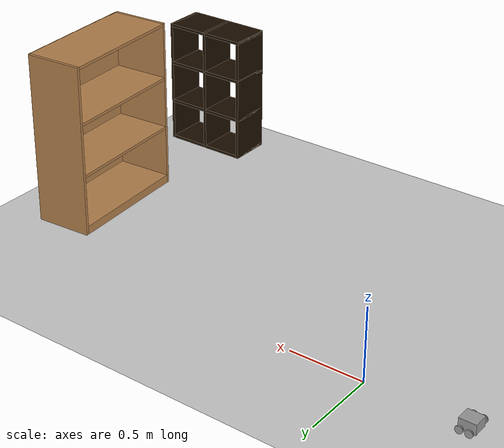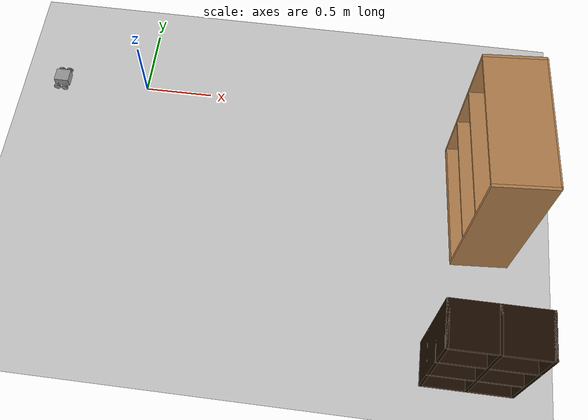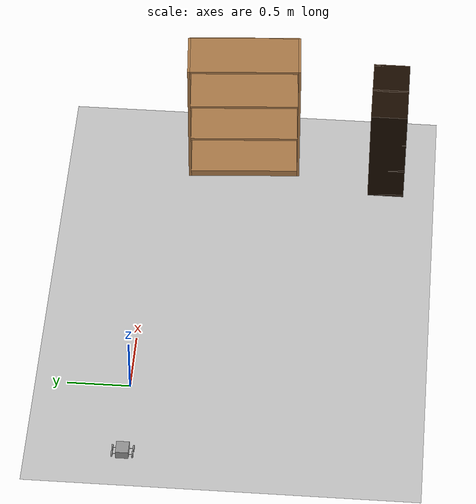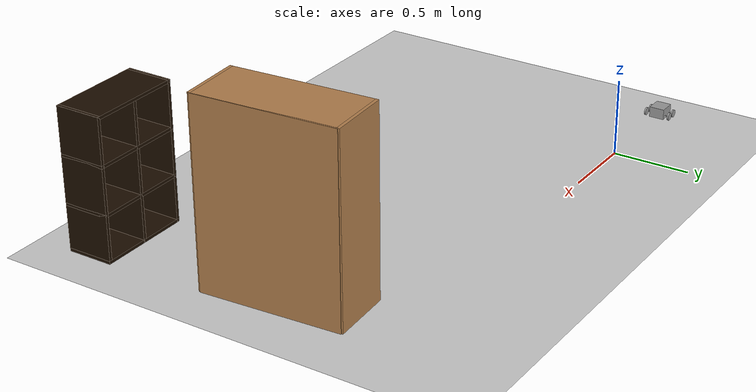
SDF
<sdf version="1.6">
 <world name="default">
  <model name="ground_plane">
   <static>1</static>
   <link name="link">
    <collision name="collision">
     <geometry><plane><normal>0 0 1</normal><size>100 100</size></plane></geometry>
     <surface>
      <contact><collide_bitmask>65535</collide_bitmask></contact>
      <friction><ode><mu>100</mu><mu2>50</mu2></ode></friction>
     </surface>
    </collision>
    <visual name="visual">
     <cast_shadows>0</cast_shadows>
     <geometry><plane><normal>0 0 1</normal><size>100 100</size></plane></geometry>
     <material>
      <script><uri>file://media/materials/scripts/gazebo.material</uri><name>Gazebo/Grey</name></script>
     </material>
    </visual>
   </link>
  </model>
  <model name="6_Cube_StorageE_0">
   <link name="Wall_0">
    <pose>0 0 0.01 0 -0 0</pose>
    <inertial>
     <mass>1.6201</mass>
     <inertia><ixx>0.0119</ixx><iyy>0.0631</iyy><izz>0.0513</izz><ixy>0</ixy><ixz>0</ixz><iyz>0</iyz></inertia>
    </inertial>
    <collision name="Wall_0_Collision"><geometry><box><size>0.616 0.296 0.02</size></box></geometry></collision>
    <visual name="Wall_0_Visual">
     <geometry><box><size>0.616 0.296 0.02</size></box></geometry>
     <material>
      <script><uri>file://media/materials/scripts/gazebo.material</uri><name>Gazebo/Grey</name></script>
      <ambient>0.105882 0.0509804 0 1</ambient>
     </material>
    </visual>
   </link>
   <joint name="0_2" type="fixed">
    <pose>-0.308 0 0 0 -0 0</pose>
    <parent>Wall_2</parent>
    <child>Wall_0</child>
    <axis>
     <xyz>1 0 0</xyz>
     <use_parent_model_frame>0</use_parent_model_frame>
     <limit><lower>-1e+16</lower><upper>1e+16</upper></limit>
    </axis>
   </joint>
   <joint name="0_12" type="fixed">
    <parent>Wall_12</parent>
    <child>Wall_0</child>
    <axis>
     <xyz>0 0 1</xyz>
     <use_parent_model_frame>0</use_parent_model_frame>
     <limit><lower>-1e+16</lower><upper>1e+16</upper></limit>
    </axis>
   </joint>
   <joint name="0_4" type="fixed">
    <pose>0.308 0 0 0 -0 0</pose>
    <parent>Wall_4</parent>
    <child>Wall_0</child>
    <axis>
     <xyz>1 0 0</xyz>
     <use_parent_model_frame>0</use_parent_model_frame>
     <limit><lower>-1e+16</lower><upper>1e+16</upper></limit>
    </axis>
   </joint>
   <link name="Wall_10">
    <pose>0 0 0.61 0 -0 0</pose>
    <inertial>
     <mass>1.6201</mass>
     <inertia><ixx>0.0119</ixx><iyy>0.0631</iyy><izz>0.0513</izz><ixy>0</ixy><ixz>0</ixz><iyz>0</iyz></inertia>
    </inertial>
    <collision name="Wall_10_Collision"><geometry><box><size>0.616 0.296 0.02</size></box></geometry></collision>
    <visual name="Wall_10_Visual">
     <geometry><box><size>0.616 0.296 0.02</size></box></geometry>
     <material>
      <script><uri>file://media/materials/scripts/gazebo.material</uri><name>Gazebo/Grey</name></script>
      <ambient>0.105882 0.0509804 0 1</ambient>
     </material>
    </visual>
   </link>
   <joint name="10_2" type="fixed">
    <pose>-0.308 0 0 0 -0 0</pose>
    <parent>Wall_2</parent>
    <child>Wall_10</child>
    <axis>
     <xyz>1 0 0</xyz>
     <use_parent_model_frame>0</use_parent_model_frame>
     <limit><lower>-1e+16</lower><upper>1e+16</upper></limit>
    </axis>
   </joint>
   <joint name="10_12" type="fixed">
    <parent>Wall_12</parent>
    <child>Wall_10</child>
    <axis>
     <xyz>0 0 1</xyz>
     <use_parent_model_frame>0</use_parent_model_frame>
     <limit><lower>-1e+16</lower><upper>1e+16</upper></limit>
    </axis>
   </joint>
   <joint name="10_4" type="fixed">
    <pose>0.308 0 0 0 -0 0</pose>
    <parent>Wall_4</parent>
    <child>Wall_10</child>
    <axis>
     <xyz>1 0 0</xyz>
     <use_parent_model_frame>0</use_parent_model_frame>
     <limit><lower>-1e+16</lower><upper>1e+16</upper></limit>
    </axis>
   </joint>
   <link name="Wall_12">
    <pose>0 0 0.4575 0 -0 0</pose>
    <inertial>
     <mass>2.4065</mass>
     <inertia><ixx>0.0177</ixx><iyy>0.1855</iyy><izz>0.168</izz><ixy>0</ixy><ixz>0</ixz><iyz>0</iyz></inertia>
    </inertial>
    <collision name="Wall_12_Collision"><geometry><box><size>0.02 0.296 0.915</size></box></geometry></collision>
    <visual name="Wall_12_Visual">
     <geometry><box><size>0.02 0.296 0.915</size></box></geometry>
     <material>
      <script><uri>file://media/materials/scripts/gazebo.material</uri><name>Gazebo/Grey</name></script>
      <ambient>0.105882 0.0509804 0 1</ambient>
     </material>
    </visual>
   </link>
   <link name="Wall_2">
    <pose>-0.298 0 0.4575 0 -0 0</pose>
    <inertial>
     <mass>2.4065</mass>
     <inertia><ixx>0.0177</ixx><iyy>0.1855</iyy><izz>0.168</izz><ixy>0</ixy><ixz>0</ixz><iyz>0</iyz></inertia>
    </inertial>
    <collision name="Wall_2_Collision"><geometry><box><size>0.02 0.296 0.915</size></box></geometry></collision>
    <visual name="Wall_2_Visual">
     <geometry><box><size>0.02 0.296 0.915</size></box></geometry>
     <material>
      <script><uri>file://media/materials/scripts/gazebo.material</uri><name>Gazebo/Grey</name></script>
      <ambient>0.105882 0.0509804 0 1</ambient>
     </material>
    </visual>
   </link>
   <link name="Wall_4">
    <pose>0.298 0 0.4575 0 -0 0</pose>
    <inertial>
     <mass>2.4065</mass>
     <inertia><ixx>0.0177</ixx><iyy>0.1855</iyy><izz>0.168</izz><ixy>0</ixy><ixz>0</ixz><iyz>0</iyz></inertia>
    </inertial>
    <collision name="Wall_4_Collision"><geometry><box><size>0.02 0.296 0.915</size></box></geometry></collision>
    <visual name="Wall_4_Visual">
     <geometry><box><size>0.02 0.296 0.915</size></box></geometry>
     <material>
      <script><uri>file://media/materials/scripts/gazebo.material</uri><name>Gazebo/Grey</name></script>
      <ambient>0.105882 0.0509804 0 1</ambient>
     </material>
    </visual>
   </link>
   <link name="Wall_6">
    <pose>0 0 0.905 0 -0 0</pose>
    <inertial>
     <mass>1.6201</mass>
     <inertia><ixx>0.0119</ixx><iyy>0.0631</iyy><izz>0.0513</izz><ixy>0</ixy><ixz>0</ixz><iyz>0</iyz></inertia>
    </inertial>
    <collision name="Wall_6_Collision"><geometry><box><size>0.616 0.296 0.02</size></box></geometry></collision>
    <visual name="Wall_6_Visual">
     <geometry><box><size>0.616 0.296 0.02</size></box></geometry>
     <material>
      <script><uri>file://media/materials/scripts/gazebo.material</uri><name>Gazebo/Grey</name></script>
      <ambient>0.105882 0.0509804 0 1</ambient>
     </material>
    </visual>
   </link>
   <joint name="6_2" type="fixed">
    <pose>-0.308 0 0 0 -0 0</pose>
    <parent>Wall_2</parent>
    <child>Wall_6</child>
    <axis>
     <xyz>2 0 0</xyz>
     <use_parent_model_frame>0</use_parent_model_frame>
     <limit><lower>-1e+16</lower><upper>1e+16</upper></limit>
    </axis>
   </joint>
   <joint name="6_12" type="fixed">
    <parent>Wall_12</parent>
    <child>Wall_6</child>
    <axis>
     <xyz>0 0 1</xyz>
     <use_parent_model_frame>0</use_parent_model_frame>
     <limit><lower>-1e+16</lower><upper>1e+16</upper></limit>
    </axis>
   </joint>
   <joint name="6_4" type="fixed">
    <pose>0.308 0 0 0 -0 0</pose>
    <parent>Wall_4</parent>
    <child>Wall_6</child>
    <axis>
     <xyz>1 0 0</xyz>
     <use_parent_model_frame>0</use_parent_model_frame>
     <limit><lower>-1e+16</lower><upper>1e+16</upper></limit>
    </axis>
   </joint>
   <link name="Wall_8">
    <pose>0 0 0.305 0 -0 0</pose>
    <inertial>
     <mass>1.6201</mass>
     <inertia><ixx>0.0119</ixx><iyy>0.0631</iyy><izz>0.0513</izz><ixy>0</ixy><ixz>0</ixz><iyz>0</iyz></inertia>
    </inertial>
    <collision name="Wall_8_Collision"><geometry><box><size>0.616 0.296 0.02</size></box></geometry></collision>
    <visual name="Wall_8_Visual">
     <geometry><box><size>0.616 0.296 0.02</size></box></geometry>
     <material>
      <script><uri>file://media/materials/scripts/gazebo.material</uri><name>Gazebo/Grey</name></script>
      <ambient>0.105882 0.0509804 0 1</ambient>
     </material>
    </visual>
   </link>
   <joint name="8_2" type="fixed">
    <pose>-0.308 0 0 0 -0 0</pose>
    <parent>Wall_2</parent>
    <child>Wall_8</child>
    <axis>
     <xyz>1 0 0</xyz>
     <use_parent_model_frame>0</use_parent_model_frame>
     <limit><lower>-1e+16</lower><upper>1e+16</upper></limit>
    </axis>
   </joint>
   <joint name="8_12" type="fixed">
    <parent>Wall_12</parent>
    <child>Wall_8</child>
    <axis>
     <xyz>0 0 1</xyz>
     <use_parent_model_frame>0</use_parent_model_frame>
     <limit><lower>-1e+16</lower><upper>1e+16</upper></limit>
    </axis>
   </joint>
   <joint name="8_4" type="fixed">
    <pose>0.308 0 0 0 -0 0</pose>
    <parent>Wall_4</parent>
    <child>Wall_8</child>
    <axis>
     <xyz>1 0 0</xyz>
     <use_parent_model_frame>0</use_parent_model_frame>
     <limit><lower>-1e+16</lower><upper>1e+16</upper></limit>
    </axis>
   </joint>
   <static>1</static>
   <pose>2.51935 -1.90641 0 0 -0 0</pose>
  </model>
  <model name="Scout_0">
   <link name="link_5">
    <pose>0.000124 0.000467 0.012036 0 1.5707 0</pose>
    <inertial>
     <mass>1</mass>
     <inertia>
      <ixx>0.166667</ixx>
      <ixy>0</ixy>
      <ixz>0</ixz>
      <iyy>0.166667</iyy>
      <iyz>0</iyz>
      <izz>0.166667</izz>
     </inertia>
    </inertial>
    <visual name="visual">
     <geometry><box><size>0.07 0.1 0.11</size></box></geometry>
     <material>
      <lighting>1</lighting>
      <script><uri>file://media/materials/scripts/gazebo.material</uri><name>Gazebo/Grey</name></script>
      <shader type="pixel"><normal_map>__default__</normal_map></shader>
      <ambient>0.3 0.3 0.3 1</ambient>
      <diffuse>0.7 0.7 0.7 1</diffuse>
      <specular>0.01 0.01 0.01 1</specular>
      <emissive>0 0 0 1</emissive>
     </material>
    </visual>
    <collision name="collision">
     <geometry><box><size>0.07 0.1 0.11</size></box></geometry>
     <surface>
      <friction>
       <ode><mu>1</mu><mu2>1</mu2><fdir1>0 0 0</fdir1><slip1>0</slip1><slip2>0</slip2></ode>
       <torsional>
        <coefficient>1</coefficient>
        <patch_radius>0</patch_radius>
        <surface_radius>0</surface_radius>
        <use_patch_radius>1</use_patch_radius>
        <ode><slip>0</slip></ode>
       </torsional>
      </friction>
      <bounce><restitution_coefficient>0</restitution_coefficient><threshold>1e+06</threshold></bounce>
      <contact>
       <collide_without_contact>0</collide_without_contact>
       <collide_without_contact_bitmask>1</collide_without_contact_bitmask>
       <collide_bitmask>1</collide_bitmask>
       <ode>
        <soft_cfm>0</soft_cfm>
        <soft_erp>0.2</soft_erp>
        <kp>1e+13</kp>
        <kd>1</kd>
        <max_vel>0.01</max_vel>
        <min_depth>0</min_depth>
       </ode>
       <bullet>
        <split_impulse>1</split_impulse>
        <split_impulse_penetration_threshold>-0.01</split_impulse_penetration_threshold>
        <soft_cfm>0</soft_cfm>
        <soft_erp>0.2</soft_erp>
        <kp>1e+13</kp>
        <kd>1</kd>
       </bullet>
      </contact>
     </surface>
    </collision>
   </link>
   <link name="link_6">
    <pose>0.030124 -0.082817 -0.002561 1.5707 -0 0</pose>
    <inertial>
     <mass>1</mass>
     <inertia><ixx>0.145833</ixx><ixy>0</ixy><ixz>0</ixz><iyy>0.145833</iyy><iyz>0</iyz><izz>0.125</izz></inertia>
    </inertial>
    <visual name="visual">
     <geometry><cylinder><radius>0.0254</radius><length>0.01</length></cylinder></geometry>
     <material>
      <lighting>1</lighting>
      <script><uri>file://media/materials/scripts/gazebo.material</uri><name>Gazebo/Grey</name></script>
      <shader type="pixel"><normal_map>__default__</normal_map></shader>
      <ambient>0.3 0.3 0.3 1</ambient>
      <diffuse>0.7 0.7 0.7 1</diffuse>
      <specular>0.01 0.01 0.01 1</specular>
      <emissive>0 0 0 1</emissive>
     </material>
    </visual>
    <collision name="collision">
     <geometry><cylinder><radius>0.0254</radius><length>0.01</length></cylinder></geometry>
     <surface>
      <friction>
       <ode><mu>1</mu><mu2>1</mu2><fdir1>0 0 0</fdir1><slip1>0</slip1><slip2>0</slip2></ode>
       <torsional>
        <coefficient>1</coefficient>
        <patch_radius>0</patch_radius>
        <surface_radius>0</surface_radius>
        <use_patch_radius>1</use_patch_radius>
        <ode><slip>0</slip></ode>
       </torsional>
      </friction>
      <bounce><restitution_coefficient>0</restitution_coefficient><threshold>1e+06</threshold></bounce>
      <contact>
       <collide_without_contact>0</collide_without_contact>
       <collide_without_contact_bitmask>1</collide_without_contact_bitmask>
       <collide_bitmask>1</collide_bitmask>
       <ode>
        <soft_cfm>0</soft_cfm>
        <soft_erp>0.2</soft_erp>
        <kp>1e+13</kp>
        <kd>1</kd>
        <max_vel>0.01</max_vel>
        <min_depth>0</min_depth>
       </ode>
       <bullet>
        <split_impulse>1</split_impulse>
        <split_impulse_penetration_threshold>-0.01</split_impulse_penetration_threshold>
        <soft_cfm>0</soft_cfm>
        <soft_erp>0.2</soft_erp>
        <kp>1e+13</kp>
        <kd>1</kd>
       </bullet>
      </contact>
     </surface>
    </collision>
   </link>
   <link name="link_6_clone">
    <pose>-0.029876 -0.079536 -0.002561 1.5707 -0 0</pose>
    <inertial>
     <mass>1</mass>
     <inertia><ixx>0.145833</ixx><ixy>0</ixy><ixz>0</ixz><iyy>0.145833</iyy><iyz>0</iyz><izz>0.125</izz></inertia>
    </inertial>
    <visual name="visual">
     <geometry><cylinder><radius>0.0254</radius><length>0.01</length></cylinder></geometry>
     <material>
      <lighting>1</lighting>
      <script><uri>file://media/materials/scripts/gazebo.material</uri><name>Gazebo/Grey</name></script>
      <shader type="pixel"><normal_map>__default__</normal_map></shader>
      <ambient>0.3 0.3 0.3 1</ambient>
      <diffuse>0.7 0.7 0.7 1</diffuse>
      <specular>0.01 0.01 0.01 1</specular>
      <emissive>0 0 0 1</emissive>
     </material>
    </visual>
    <collision name="collision">
     <geometry><cylinder><radius>0.0254</radius><length>0.01</length></cylinder></geometry>
     <surface>
      <friction>
       <ode><mu>1</mu><mu2>1</mu2><fdir1>0 0 0</fdir1><slip1>0</slip1><slip2>0</slip2></ode>
       <torsional>
        <coefficient>1</coefficient>
        <patch_radius>0</patch_radius>
        <surface_radius>0</surface_radius>
        <use_patch_radius>1</use_patch_radius>
        <ode><slip>0</slip></ode>
       </torsional>
      </friction>
      <bounce><restitution_coefficient>0</restitution_coefficient><threshold>1e+06</threshold></bounce>
      <contact>
       <collide_without_contact>0</collide_without_contact>
       <collide_without_contact_bitmask>1</collide_without_contact_bitmask>
       <collide_bitmask>1</collide_bitmask>
       <ode>
        <soft_cfm>0</soft_cfm>
        <soft_erp>0.2</soft_erp>
        <kp>1e+13</kp>
        <kd>1</kd>
        <max_vel>0.01</max_vel>
        <min_depth>0</min_depth>
       </ode>
       <bullet>
        <split_impulse>1</split_impulse>
        <split_impulse_penetration_threshold>-0.01</split_impulse_penetration_threshold>
        <soft_cfm>0</soft_cfm>
        <soft_erp>0.2</soft_erp>
        <kp>1e+13</kp>
        <kd>1</kd>
       </bullet>
      </contact>
     </surface>
    </collision>
   </link>
   <link name="link_6_clone_0">
    <pose>0.02967 0.080483 -0.002563 1.5707 -0 0</pose>
    <inertial>
     <mass>1</mass>
     <inertia><ixx>0.145833</ixx><ixy>0</ixy><ixz>0</ixz><iyy>0.145833</iyy><iyz>0</iyz><izz>0.125</izz></inertia>
    </inertial>
    <visual name="visual">
     <geometry><cylinder><radius>0.0254</radius><length>0.01</length></cylinder></geometry>
     <material>
      <lighting>1</lighting>
      <script><uri>file://media/materials/scripts/gazebo.material</uri><name>Gazebo/Grey</name></script>
      <shader type="pixel"><normal_map>__default__</normal_map></shader>
      <ambient>0.3 0.3 0.3 1</ambient>
      <diffuse>0.7 0.7 0.7 1</diffuse>
      <specular>0.01 0.01 0.01 1</specular>
      <emissive>0 0 0 1</emissive>
     </material>
    </visual>
    <collision name="collision">
     <geometry><cylinder><radius>0.0254</radius><length>0.01</length></cylinder></geometry>
     <surface>
      <friction>
       <ode><mu>1</mu><mu2>1</mu2><fdir1>0 0 0</fdir1><slip1>0</slip1><slip2>0</slip2></ode>
       <torsional>
        <coefficient>1</coefficient>
        <patch_radius>0</patch_radius>
        <surface_radius>0</surface_radius>
        <use_patch_radius>1</use_patch_radius>
        <ode><slip>0</slip></ode>
       </torsional>
      </friction>
      <bounce><restitution_coefficient>0</restitution_coefficient><threshold>1e+06</threshold></bounce>
      <contact>
       <collide_without_contact>0</collide_without_contact>
       <collide_without_contact_bitmask>1</collide_without_contact_bitmask>
       <collide_bitmask>1</collide_bitmask>
       <ode>
        <soft_cfm>0</soft_cfm>
        <soft_erp>0.2</soft_erp>
        <kp>1e+13</kp>
        <kd>1</kd>
        <max_vel>0.01</max_vel>
        <min_depth>0</min_depth>
       </ode>
       <bullet>
        <split_impulse>1</split_impulse>
        <split_impulse_penetration_threshold>-0.01</split_impulse_penetration_threshold>
        <soft_cfm>0</soft_cfm>
        <soft_erp>0.2</soft_erp>
        <kp>1e+13</kp>
        <kd>1</kd>
       </bullet>
      </contact>
     </surface>
    </collision>
   </link>
   <link name="link_6_clone_1">
    <pose>-0.029876 0.080469 -0.002563 1.5707 -0 0</pose>
    <inertial>
     <mass>1</mass>
     <inertia><ixx>0.145833</ixx><ixy>0</ixy><ixz>0</ixz><iyy>0.145833</iyy><iyz>0</iyz><izz>0.125</izz></inertia>
    </inertial>
    <visual name="visual">
     <geometry><cylinder><radius>0.0254</radius><length>0.01</length></cylinder></geometry>
     <material>
      <lighting>1</lighting>
      <script><uri>file://media/materials/scripts/gazebo.material</uri><name>Gazebo/Grey</name></script>
      <shader type="pixel"><normal_map>__default__</normal_map></shader>
      <ambient>0.3 0.3 0.3 1</ambient>
      <diffuse>0.7 0.7 0.7 1</diffuse>
      <specular>0.01 0.01 0.01 1</specular>
      <emissive>0 0 0 1</emissive>
     </material>
    </visual>
    <collision name="collision">
     <geometry><cylinder><radius>0.0254</radius><length>0.01</length></cylinder></geometry>
     <surface>
      <friction>
       <ode><mu>1</mu><mu2>1</mu2><fdir1>0 0 0</fdir1><slip1>0</slip1><slip2>0</slip2></ode>
       <torsional>
        <coefficient>1</coefficient>
        <patch_radius>0</patch_radius>
        <surface_radius>0</surface_radius>
        <use_patch_radius>1</use_patch_radius>
        <ode><slip>0</slip></ode>
       </torsional>
      </friction>
      <bounce><restitution_coefficient>0</restitution_coefficient><threshold>1e+06</threshold></bounce>
      <contact>
       <collide_without_contact>0</collide_without_contact>
       <collide_without_contact_bitmask>1</collide_without_contact_bitmask>
       <collide_bitmask>1</collide_bitmask>
       <ode>
        <soft_cfm>0</soft_cfm>
        <soft_erp>0.2</soft_erp>
        <kp>1e+13</kp>
        <kd>1</kd>
        <max_vel>0.01</max_vel>
        <min_depth>0</min_depth>
       </ode>
       <bullet>
        <split_impulse>1</split_impulse>
        <split_impulse_penetration_threshold>-0.01</split_impulse_penetration_threshold>
        <soft_cfm>0</soft_cfm>
        <soft_erp>0.2</soft_erp>
        <kp>1e+13</kp>
        <kd>1</kd>
       </bullet>
      </contact>
     </surface>
    </collision>
   </link>
   <link name="link_7">
    <pose>0.029712 0.000467 -0.000894 1.5707 -0 0</pose>
    <inertial>
     <mass>1</mass>
     <inertia><ixx>0.145833</ixx><ixy>0</ixy><ixz>0</ixz><iyy>0.145833</iyy><iyz>0</iyz><izz>0.125</izz></inertia>
    </inertial>
    <visual name="visual">
     <geometry><cylinder><radius>0.001</radius><length>0.15</length></cylinder></geometry>
     <material>
      <lighting>1</lighting>
      <script><uri>file://media/materials/scripts/gazebo.material</uri><name>Gazebo/Grey</name></script>
      <shader type="pixel"><normal_map>__default__</normal_map></shader>
      <ambient>0.3 0.3 0.3 1</ambient>
      <diffuse>0.7 0.7 0.7 1</diffuse>
      <specular>0.01 0.01 0.01 1</specular>
      <emissive>0 0 0 1</emissive>
     </material>
    </visual>
    <collision name="collision">
     <geometry><cylinder><radius>0.001</radius><length>0.15</length></cylinder></geometry>
     <surface>
      <friction>
       <ode><mu>1</mu><mu2>1</mu2><fdir1>0 0 0</fdir1><slip1>0</slip1><slip2>0</slip2></ode>
       <torsional>
        <coefficient>1</coefficient>
        <patch_radius>0</patch_radius>
        <surface_radius>0</surface_radius>
        <use_patch_radius>1</use_patch_radius>
        <ode><slip>0</slip></ode>
       </torsional>
      </friction>
      <bounce><restitution_coefficient>0</restitution_coefficient><threshold>1e+06</threshold></bounce>
      <contact>
       <collide_without_contact>0</collide_without_contact>
       <collide_without_contact_bitmask>1</collide_without_contact_bitmask>
       <collide_bitmask>1</collide_bitmask>
       <ode>
        <soft_cfm>0</soft_cfm>
        <soft_erp>0.2</soft_erp>
        <kp>1e+13</kp>
        <kd>1</kd>
        <max_vel>0.01</max_vel>
        <min_depth>0</min_depth>
       </ode>
       <bullet>
        <split_impulse>1</split_impulse>
        <split_impulse_penetration_threshold>-0.01</split_impulse_penetration_threshold>
        <soft_cfm>0</soft_cfm>
        <soft_erp>0.2</soft_erp>
        <kp>1e+13</kp>
        <kd>1</kd>
       </bullet>
      </contact>
     </surface>
    </collision>
   </link>
   <link name="link_7_clone">
    <pose>-0.029876 0.000467 -0.000894 1.5707 -0 0</pose>
    <inertial>
     <mass>1</mass>
     <inertia><ixx>0.145833</ixx><ixy>0</ixy><ixz>0</ixz><iyy>0.145833</iyy><iyz>0</iyz><izz>0.125</izz></inertia>
    </inertial>
    <visual name="visual">
     <geometry><cylinder><radius>0.001</radius><length>0.15</length></cylinder></geometry>
     <material>
      <lighting>1</lighting>
      <script><uri>file://media/materials/scripts/gazebo.material</uri><name>Gazebo/Grey</name></script>
      <shader type="pixel"><normal_map>__default__</normal_map></shader>
      <ambient>0.3 0.3 0.3 1</ambient>
      <diffuse>0.7 0.7 0.7 1</diffuse>
      <specular>0.01 0.01 0.01 1</specular>
      <emissive>0 0 0 1</emissive>
     </material>
    </visual>
    <collision name="collision">
     <geometry><cylinder><radius>0.001</radius><length>0.15</length></cylinder></geometry>
     <surface>
      <friction>
       <ode><mu>1</mu><mu2>1</mu2><fdir1>0 0 0</fdir1><slip1>0</slip1><slip2>0</slip2></ode>
       <torsional>
        <coefficient>1</coefficient>
        <patch_radius>0</patch_radius>
        <surface_radius>0</surface_radius>
        <use_patch_radius>1</use_patch_radius>
        <ode><slip>0</slip></ode>
       </torsional>
      </friction>
      <bounce><restitution_coefficient>0</restitution_coefficient><threshold>1e+06</threshold></bounce>
      <contact>
       <collide_without_contact>0</collide_without_contact>
       <collide_without_contact_bitmask>1</collide_without_contact_bitmask>
       <collide_bitmask>1</collide_bitmask>
       <ode>
        <soft_cfm>0</soft_cfm>
        <soft_erp>0.2</soft_erp>
        <kp>1e+13</kp>
        <kd>1</kd>
        <max_vel>0.01</max_vel>
        <min_depth>0</min_depth>
       </ode>
       <bullet>
        <split_impulse>1</split_impulse>
        <split_impulse_penetration_threshold>-0.01</split_impulse_penetration_threshold>
        <soft_cfm>0</soft_cfm>
        <soft_erp>0.2</soft_erp>
        <kp>1e+13</kp>
        <kd>1</kd>
       </bullet>
      </contact>
     </surface>
    </collision>
   </link>
   <joint name="link_5_JOINT_13" type="fixed">
    <parent>link_5</parent>
    <child>link_7</child>
    <physics>
     <ode><limit><cfm>0</cfm><erp>0.2</erp></limit><suspension><cfm>0</cfm><erp>0.2</erp></suspension></ode>
    </physics>
   </joint>
   <joint name="link_5_JOINT_14" type="fixed">
    <parent>link_5</parent>
    <child>link_7_clone</child>
    <physics>
     <ode><limit><cfm>0</cfm><erp>0.2</erp></limit><suspension><cfm>0</cfm><erp>0.2</erp></suspension></ode>
    </physics>
   </joint>
   <joint name="link_7_JOINT_12" type="revolute">
    <parent>link_7</parent>
    <child>link_6</child>
    <axis>
     <xyz>1 0 0</xyz>
     <use_parent_model_frame>0</use_parent_model_frame>
     <limit>
      <lower>-1.79769e+308</lower>
      <upper>1.79769e+308</upper>
      <effort>-1</effort>
      <velocity>-1</velocity>
     </limit>
     <dynamics>
      <spring_reference>0</spring_reference>
      <spring_stiffness>0</spring_stiffness>
      <damping>0</damping>
     </dynamics>
    </axis>
    <physics>
     <ode><limit><cfm>0</cfm><erp>0.2</erp></limit><suspension><cfm>0</cfm><erp>0.2</erp></suspension></ode>
    </physics>
   </joint>
   <joint name="link_7_JOINT_8" type="revolute">
    <parent>link_7</parent>
    <child>link_6_clone_0</child>
    <axis>
     <xyz>1 0 0</xyz>
     <use_parent_model_frame>0</use_parent_model_frame>
     <limit>
      <lower>-1.79769e+308</lower>
      <upper>1.79769e+308</upper>
      <effort>-1</effort>
      <velocity>-1</velocity>
     </limit>
     <dynamics>
      <spring_reference>0</spring_reference>
      <spring_stiffness>0</spring_stiffness>
      <damping>0</damping>
      <friction>0</friction>
     </dynamics>
    </axis>
    <physics>
     <ode><limit><cfm>0</cfm><erp>0.2</erp></limit><suspension><cfm>0</cfm><erp>0.2</erp></suspension></ode>
    </physics>
   </joint>
   <joint name="link_7_clone_JOINT_10" type="revolute">
    <parent>link_7_clone</parent>
    <child>link_6_clone_1</child>
    <axis>
     <xyz>1 0 0</xyz>
     <use_parent_model_frame>0</use_parent_model_frame>
     <limit>
      <lower>-1.79769e+308</lower>
      <upper>1.79769e+308</upper>
      <effort>-1</effort>
      <velocity>-1</velocity>
     </limit>
     <dynamics>
      <spring_reference>0</spring_reference>
      <spring_stiffness>0</spring_stiffness>
      <damping>0</damping>
      <friction>0</friction>
     </dynamics>
    </axis>
    <physics>
     <ode><limit><cfm>0</cfm><erp>0.2</erp></limit><suspension><cfm>0</cfm><erp>0.2</erp></suspension></ode>
    </physics>
   </joint>
   <joint name="link_7_clone_JOINT_11" type="revolute">
    <parent>link_7_clone</parent>
    <child>link_6_clone</child>
    <axis>
     <xyz>1 0 0</xyz>
     <use_parent_model_frame>0</use_parent_model_frame>
     <limit>
      <lower>-1.79769e+308</lower>
      <upper>1.79769e+308</upper>
      <effort>-1</effort>
      <velocity>-1</velocity>
     </limit>
     <dynamics>
      <spring_reference>0</spring_reference>
      <spring_stiffness>0</spring_stiffness>
      <damping>0</damping>
     </dynamics>
    </axis>
    <physics>
     <ode><limit><cfm>0</cfm><erp>0.2</erp></limit><suspension><cfm>0</cfm><erp>0.2</erp></suspension></ode>
    </physics>
   </joint>
   <static>0</static>
   <pose>-0.667909 -0.004186 0.027963 1.4e-05 2.7e-05 -0.000102</pose>
  </model>
  <model name="bookshelf_2">
   <static>1</static>
   <link name="link">
    <inertial><mass>1</mass></inertial>
    <collision name="back">
     <pose>0 0.005 0.6 0 -0 0</pose>
     <geometry><box><size>0.9 0.01 1.2</size></box></geometry>
    </collision>
    <visual name="visual1">
     <pose>0 0.005 0.6 0 -0 0</pose>
     <geometry><box><size>0.9 0.01 1.2</size></box></geometry>
     <material>
      <script><uri>file://media/materials/scripts/gazebo.material</uri><name>Gazebo/Wood</name></script>
     </material>
    </visual>
    <collision name="left_side">
     <pose>0.45 -0.195 0.6 0 -0 0</pose>
     <geometry><box><size>0.02 0.4 1.2</size></box></geometry>
    </collision>
    <visual name="visual2">
     <pose>0.45 -0.195 0.6 0 -0 0</pose>
     <geometry><box><size>0.02 0.4 1.2</size></box></geometry>
     <material>
      <script><uri>file://media/materials/scripts/gazebo.material</uri><name>Gazebo/Wood</name></script>
     </material>
    </visual>
    <collision name="right_side">
     <pose>-0.45 -0.195 0.6 0 -0 0</pose>
     <geometry><box><size>0.02 0.4 1.2</size></box></geometry>
    </collision>
    <visual name="visual3">
     <pose>-0.45 -0.195 0.6 0 -0 0</pose>
     <geometry><box><size>0.02 0.4 1.2</size></box></geometry>
     <material>
      <script><uri>file://media/materials/scripts/gazebo.material</uri><name>Gazebo/Wood</name></script>
     </material>
    </visual>
    <collision name="bottom">
     <pose>0 -0.195 0.03 0 -0 0</pose>
     <geometry><box><size>0.88 0.4 0.06</size></box></geometry>
    </collision>
    <visual name="visual4">
     <pose>0 -0.195 0.03 0 -0 0</pose>
     <geometry><box><size>0.88 0.4 0.06</size></box></geometry>
     <material>
      <script><uri>file://media/materials/scripts/gazebo.material</uri><name>Gazebo/Wood</name></script>
     </material>
    </visual>
    <collision name="top">
     <pose>0 -0.195 1.19 0 -0 0</pose>
     <geometry><box><size>0.88 0.4 0.02</size></box></geometry>
    </collision>
    <visual name="visual5">
     <pose>0 -0.195 1.19 0 -0 0</pose>
     <geometry><box><size>0.88 0.4 0.02</size></box></geometry>
     <material>
      <script><uri>file://media/materials/scripts/gazebo.material</uri><name>Gazebo/Wood</name></script>
     </material>
    </visual>
    <collision name="low_shelf">
     <pose>0 -0.195 0.43 0 -0 0</pose>
     <geometry><box><size>0.88 0.4 0.02</size></box></geometry>
    </collision>
    <visual name="visual6">
     <pose>0 -0.195 0.43 0 -0 0</pose>
     <geometry><box><size>0.88 0.4 0.02</size></box></geometry>
     <material>
      <script><uri>file://media/materials/scripts/gazebo.material</uri><name>Gazebo/Wood</name></script>
     </material>
    </visual>
    <collision name="high_shelf">
     <pose>0 -0.195 0.8 0 -0 0</pose>
     <geometry><box><size>0.88 0.4 0.02</size></box></geometry>
    </collision>
    <visual name="visual7">
     <pose>0 -0.195 0.8 0 -0 0</pose>
     <geometry><box><size>0.88 0.4 0.02</size></box></geometry>
     <material>
      <script><uri>file://media/materials/scripts/gazebo.material</uri><name>Gazebo/Wood</name></script>
     </material>
    </visual>
   </link>
   <pose>2.75185 -0.692736 0 0 0 -1.50438</pose>
  </model>
 </world>
</sdf>
